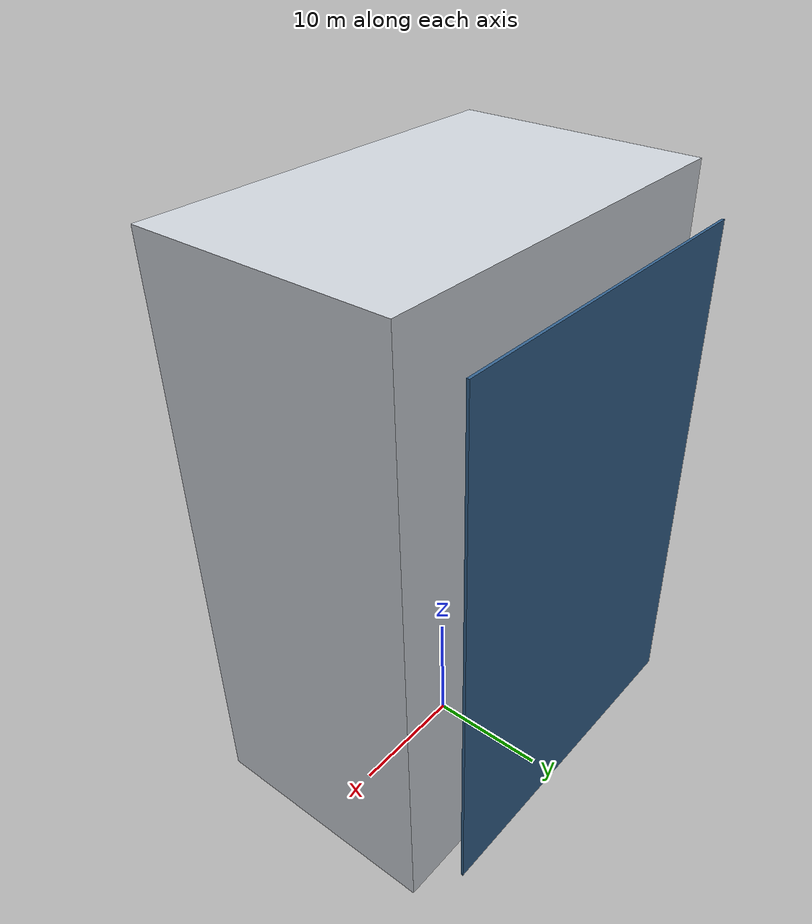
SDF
<?xml version="1.0" ?>
<sdf version="1.8">
  <model name="xinzhuang_station_east_tower">
    <static>true</static>
    <link name="east_tower_link">
      <collision name="col"><pose>0 0 24.0 0 0 0</pose><geometry><box><size>32.0 20.0 48.0</size></box></geometry></collision>
      <visual name="main_vis"><pose>0 0 24.0 0 0 0</pose><geometry><box><size>32.0 20.0 48.0</size></box></geometry><material><ambient>0.74 0.76 0.78 1</ambient><diffuse>0.80 0.82 0.85 1</diffuse></material></visual>
      <visual name="glass_vis"><pose>0 13.1 24.0 0 0 0</pose><geometry><box><size>28.0 0.2 42.0</size></box></geometry><material><ambient>0.15 0.28 0.42 0.9</ambient><diffuse>0.20 0.38 0.55 0.9</diffuse><specular>0.95 0.98 1.0 1</specular></material></visual>
    </link>
  </model>
</sdf>
